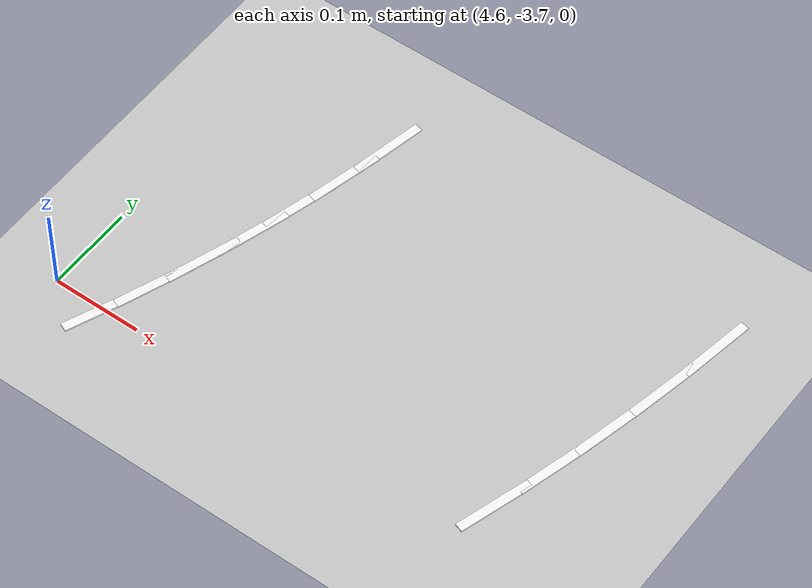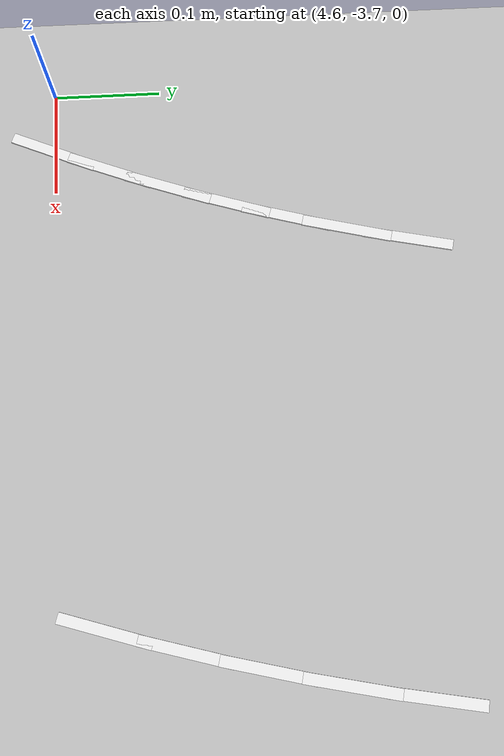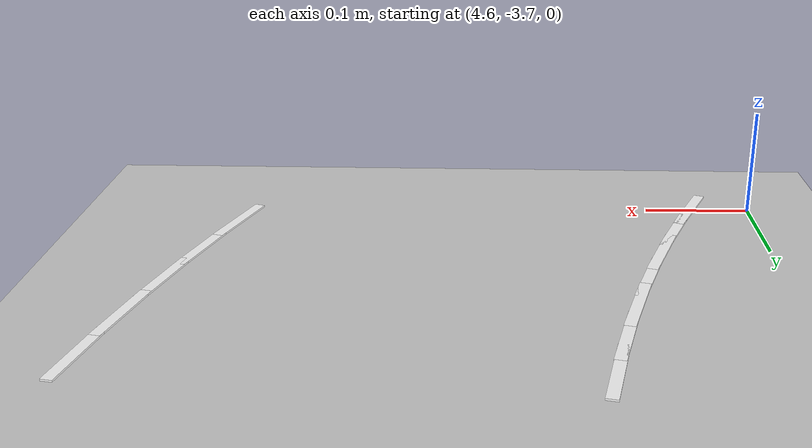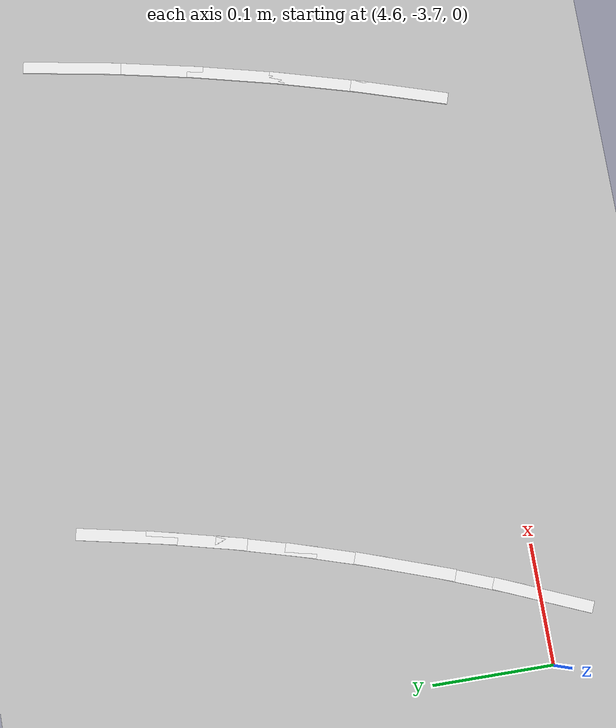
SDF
<sdf version="1.7">
 <world name="default">
  <model name="ground_plane">
   <static>1</static>
   <link name="link">
    <collision name="collision">
     <geometry><plane><normal>0 0 1</normal><size>100 100</size></plane></geometry>
     <surface>
      <contact><collide_bitmask>65535</collide_bitmask></contact>
      <friction><ode><mu>100</mu><mu2>50</mu2></ode></friction>
     </surface>
    </collision>
    <visual name="visual">
     <cast_shadows>0</cast_shadows>
     <geometry><plane><normal>0 0 1</normal><size>100 100</size></plane></geometry>
     <material>
      <script><uri>file://media/materials/scripts/gazebo.material</uri><name>Gazebo/Grey</name></script>
     </material>
    </visual>
   </link>
  </model>
  <model name="lane_line_left_86">
   <static>1</static>
   <link name="link">
    <pose>0 0 -0.004 0 -0 0</pose>
    <visual name="visual">
     <geometry><box><size>0.0841 0.01 0.01</size></box></geometry>
     <material><ambient>1 1 1 1</ambient><diffuse>1 1 1 1</diffuse></material>
    </visual>
    <collision name="collision"><geometry><box><size>0.0841 0.01 0.01</size></box></geometry></collision>
   </link>
   <pose>4.65717 -3.70204 0 0 -0 1.17008</pose>
  </model>
  <model name="lane_line_left_87">
   <static>1</static>
   <link name="link">
    <pose>0 0 -0.004 0 -0 0</pose>
    <visual name="visual">
     <geometry><box><size>0.0841 0.01 0.01</size></box></geometry>
     <material><ambient>1 1 1 1</ambient><diffuse>1 1 1 1</diffuse></material>
    </visual>
    <collision name="collision"><geometry><box><size>0.0841 0.01 0.01</size></box></geometry></collision>
   </link>
   <pose>4.67882 -3.64856 0 0 -0 1.20214</pose>
  </model>
  <model name="lane_line_left_88">
   <static>1</static>
   <link name="link">
    <pose>0 0 -0.004 0 -0 0</pose>
    <visual name="visual">
     <geometry><box><size>0.0841 0.01 0.01</size></box></geometry>
     <material><ambient>1 1 1 1</ambient><diffuse>1 1 1 1</diffuse></material>
    </visual>
    <collision name="collision"><geometry><box><size>0.0841 0.01 0.01</size></box></geometry></collision>
   </link>
   <pose>4.69875 -3.59442 0 0 -0 1.2342</pose>
  </model>
  <model name="lane_line_left_89">
   <static>1</static>
   <link name="link">
    <pose>0 0 -0.004 0 -0 0</pose>
    <visual name="visual">
     <geometry><box><size>0.0841 0.01 0.01</size></box></geometry>
     <material><ambient>1 1 1 1</ambient><diffuse>1 1 1 1</diffuse></material>
    </visual>
    <collision name="collision"><geometry><box><size>0.0841 0.01 0.01</size></box></geometry></collision>
   </link>
   <pose>4.71693 -3.53966 0 0 -0 1.26625</pose>
  </model>
  <model name="lane_line_right_89">
   <static>1</static>
   <link name="link">
    <pose>0 0 -0.004 0 -0 0</pose>
    <visual name="visual">
     <geometry><box><size>0.0841 0.01 0.01</size></box></geometry>
     <material><ambient>1 1 1 1</ambient><diffuse>1 1 1 1</diffuse></material>
    </visual>
    <collision name="collision"><geometry><box><size>0.0841 0.01 0.01</size></box></geometry></collision>
   </link>
   <pose>5.09852 -3.65961 0 0 -0 1.26625</pose>
  </model>
  <model name="lane_line_left_90">
   <static>1</static>
   <link name="link">
    <pose>0 0 -0.004 0 -0 0</pose>
    <visual name="visual">
     <geometry><box><size>0.0841 0.01 0.01</size></box></geometry>
     <material><ambient>1 1 1 1</ambient><diffuse>1 1 1 1</diffuse></material>
    </visual>
    <collision name="collision"><geometry><box><size>0.0841 0.01 0.01</size></box></geometry></collision>
   </link>
   <pose>4.73334 -3.48436 0 0 -0 1.29831</pose>
  </model>
  <model name="lane_line_right_90">
   <static>1</static>
   <link name="link">
    <pose>0 0 -0.004 0 -0 0</pose>
    <visual name="visual">
     <geometry><box><size>0.0841 0.01 0.01</size></box></geometry>
     <material><ambient>1 1 1 1</ambient><diffuse>1 1 1 1</diffuse></material>
    </visual>
    <collision name="collision"><geometry><box><size>0.0841 0.01 0.01</size></box></geometry></collision>
   </link>
   <pose>5.11858 -3.59201 0 0 -0 1.29831</pose>
  </model>
  <model name="lane_line_left_91">
   <static>1</static>
   <link name="link">
    <pose>0 0 -0.004 0 -0 0</pose>
    <visual name="visual">
     <geometry><box><size>0.0841 0.01 0.01</size></box></geometry>
     <material><ambient>1 1 1 1</ambient><diffuse>1 1 1 1</diffuse></material>
    </visual>
    <collision name="collision"><geometry><box><size>0.0841 0.01 0.01</size></box></geometry></collision>
   </link>
   <pose>4.74798 -3.42855 0 0 -0 1.33037</pose>
  </model>
  <model name="lane_line_right_91">
   <static>1</static>
   <link name="link">
    <pose>0 0 -0.004 0 -0 0</pose>
    <visual name="visual">
     <geometry><box><size>0.0841 0.01 0.01</size></box></geometry>
     <material><ambient>1 1 1 1</ambient><diffuse>1 1 1 1</diffuse></material>
    </visual>
    <collision name="collision"><geometry><box><size>0.0841 0.01 0.01</size></box></geometry></collision>
   </link>
   <pose>5.13647 -3.5238 0 0 -0 1.33037</pose>
  </model>
  <model name="lane_line_left_92">
   <static>1</static>
   <link name="link">
    <pose>0 0 -0.004 0 -0 0</pose>
    <visual name="visual">
     <geometry><box><size>0.0841 0.01 0.01</size></box></geometry>
     <material><ambient>1 1 1 1</ambient><diffuse>1 1 1 1</diffuse></material>
    </visual>
    <collision name="collision"><geometry><box><size>0.0841 0.01 0.01</size></box></geometry></collision>
   </link>
   <pose>4.76081 -3.37231 0 0 -0 1.36243</pose>
  </model>
  <model name="lane_line_right_92">
   <static>1</static>
   <link name="link">
    <pose>0 0 -0.004 0 -0 0</pose>
    <visual name="visual">
     <geometry><box><size>0.0841 0.01 0.01</size></box></geometry>
     <material><ambient>1 1 1 1</ambient><diffuse>1 1 1 1</diffuse></material>
    </visual>
    <collision name="collision"><geometry><box><size>0.0841 0.01 0.01</size></box></geometry></collision>
   </link>
   <pose>5.15216 -3.45505 0 0 -0 1.36243</pose>
  </model>
  <model name="lane_line_right_93">
   <static>1</static>
   <link name="link">
    <pose>0 0 -0.004 0 -0 0</pose>
    <visual name="visual">
     <geometry><box><size>0.0841 0.01 0.01</size></box></geometry>
     <material><ambient>1 1 1 1</ambient><diffuse>1 1 1 1</diffuse></material>
    </visual>
    <collision name="collision"><geometry><box><size>0.0841 0.01 0.01</size></box></geometry></collision>
   </link>
   <pose>5.16564 -3.38584 0 0 -0 1.39448</pose>
  </model>
 </world>
</sdf>
